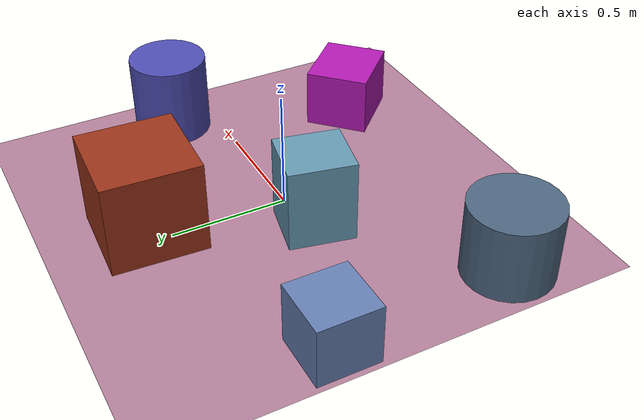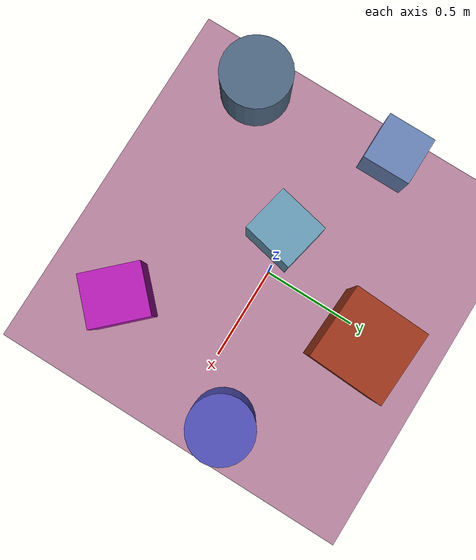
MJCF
<mujoco>
   <asset>
<texture type="skybox" builtin="gradient" rgb1="0.6 0.3 0.8" rgb2="0.8 0.1 0.8" width="256" height="256"/>
<texture name="flat_0" builtin="flat" rgb1="0.6 0.2 0.1" rgb2="0.6 0.2 0.1"  width="200" height="200"/>
<texture name="flat_1" builtin="flat" rgb1="0.4 0.6 0.7" rgb2="0.4 0.6 0.7"  width="200" height="200"/>
<texture name="gradient_2" builtin="gradient" rgb1="0.7 0.1 0.9" rgb2="0.1 0.9 0.5" width="200" height="200"/>
<texture name="flat_3" builtin="flat" rgb1="0.7 0.1 0.7" rgb2="0.7 0.1 0.7"  width="200" height="200"/>
<texture name="flat_4" builtin="flat" rgb1="0.3 0.4 0.5" rgb2="0.3 0.4 0.5"  width="200" height="200"/>
<texture name="flat_5" builtin="flat" rgb1="0.3 0.3 0.7" rgb2="0.3 0.3 0.7"  width="200" height="200"/><material name="flat_0_mat" reflectance="0" texture="flat_0" texuniform="true"/>
<material name="flat_1_mat" reflectance="0" texture="flat_1" texuniform="true"/>
<material name="gradient_2_mat" reflectance="0" texture="gradient_2" texuniform="true"/>
<material name="flat_3_mat" reflectance="0" texture="flat_3" texuniform="true"/>
<material name="flat_4_mat" reflectance="0" texture="flat_4" texuniform="true"/>
<material name="flat_5_mat" reflectance="0" texture="flat_5" texuniform="true"/>
   </asset>

   <worldbody>
      <light diffuse=".9 .9 .9" pos="0 0 3" dir="0 0 -1"/>
     <geom type="plane" size="1 1 0.1" rgba="0.7 0.5 0.6 1"/>
<geom type="box" pos="0.07 0.58 0.2" size="0.2 0.2 0.2" material="flat_0_mat" euler="0 0 87" />
<geom type="box" pos="-0.2 -0.04 0.18" size="0.14 0.13 0.18" material="flat_1_mat" euler="0 0 78" />
<geom type="box" pos="-0.85 0.23 0.13" size="0.13 0.13 0.13" material="gradient_2_mat" euler="0 0 0" />
<geom type="box" pos="0.51 -0.58 0.13" size="0.14 0.16 0.13" material="flat_3_mat" euler="0 0 44" />
<geom type="cylinder" pos="-0.79 -0.57 0.16" size="0.19 0.16 0.16" material="flat_4_mat" euler="0 0 74" />
<geom type="cylinder" pos="0.77 0.2 0.18" size="0.17 0.18 0.18" material="flat_5_mat" euler="0 0 59" /><camera euler="60 0 180" fovy="60" name="camera1" pos="-0.2 -1.5 1"></camera>   </worldbody>
</mujoco>
